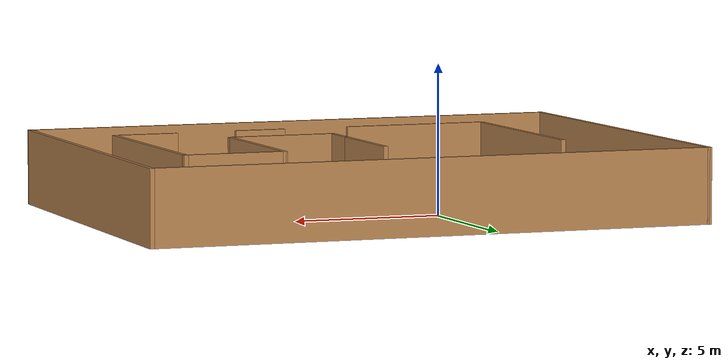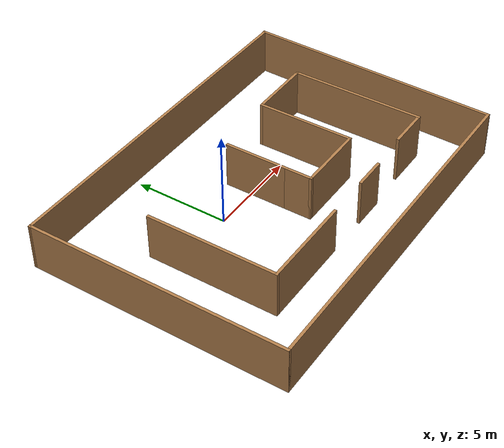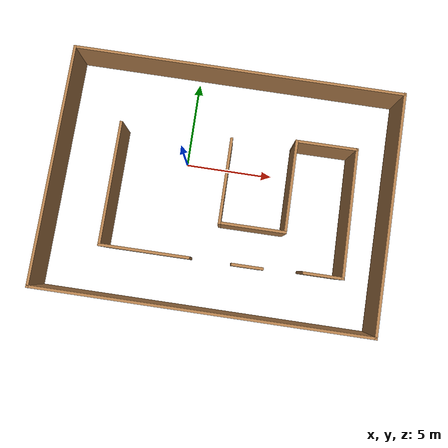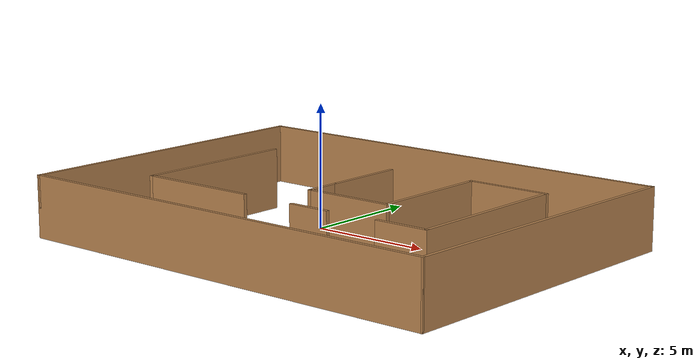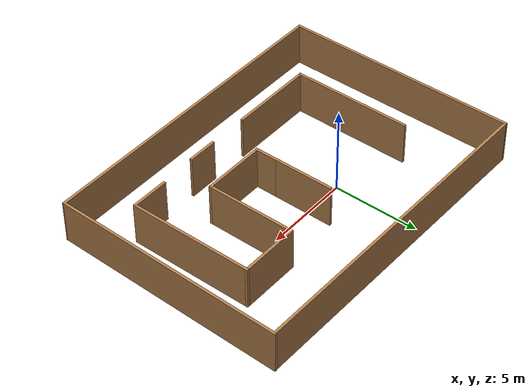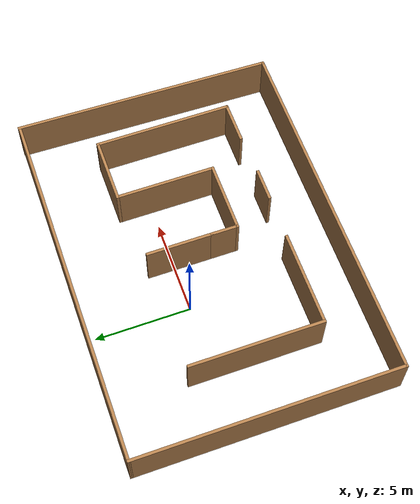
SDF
<?xml version='1.0'?>
<sdf version='1.7'>
  <model name='Untitled'>
    <pose>2.25874 -1.36255 0 0 -0 0</pose>
    <link name='Wall_32'>
      <collision name='Wall_32_Collision'>
        <geometry>
          <box>
            <size>13.75 0.15 2.5</size>
          </box>
        </geometry>
        <pose>0 0 1.25 0 -0 0</pose>
      </collision>
      <visual name='Wall_32_Visual'>
        <pose>0 0 1.25 0 -0 0</pose>
        <geometry>
          <box>
            <size>13.75 0.15 2.5</size>
          </box>
        </geometry>
        <material>
          <script>
            <uri>file://media/materials/scripts/gazebo.material</uri>
            <name>Gazebo/Wood</name>
          </script>
          <ambient>1 1 1 1</ambient>
        </material>
        <meta>
          <layer>0</layer>
        </meta>
      </visual>
      <pose>-9.45093 0.000569 0 0 -0 -1.5708</pose>
    </link>
    <link name='Wall_33'>
      <collision name='Wall_33_Collision'>
        <geometry>
          <box>
            <size>18.75 0.15 2.5</size>
          </box>
        </geometry>
        <pose>0 0 1.25 0 -0 0</pose>
      </collision>
      <visual name='Wall_33_Visual'>
        <pose>0 0 1.25 0 -0 0</pose>
        <geometry>
          <box>
            <size>18.75 0.15 2.5</size>
          </box>
        </geometry>
        <material>
          <script>
            <uri>file://media/materials/scripts/gazebo.material</uri>
            <name>Gazebo/Wood</name>
          </script>
          <ambient>1 1 1 1</ambient>
        </material>
        <meta>
          <layer>0</layer>
        </meta>
      </visual>
      <pose>-0.150932 -6.79943 0 0 -0 0</pose>
    </link>
    <link name='Wall_34'>
      <collision name='Wall_34_Collision'>
        <geometry>
          <box>
            <size>13.6466 0.15 2.5</size>
          </box>
        </geometry>
        <pose>0 0 1.25 0 -0 0</pose>
      </collision>
      <visual name='Wall_34_Visual'>
        <pose>0 0 1.25 0 -0 0</pose>
        <geometry>
          <box>
            <size>13.6466 0.15 2.5</size>
          </box>
        </geometry>
        <material>
          <script>
            <uri>file://media/materials/scripts/gazebo.material</uri>
            <name>Gazebo/Wood</name>
          </script>
          <ambient>1 1 1 1</ambient>
        </material>
        <meta>
          <layer>0</layer>
        </meta>
      </visual>
      <pose>9.29942 -0.052821 0 0 -0 1.54852</pose>
    </link>
    <link name='Wall_35'>
      <collision name='Wall_35_Collision'>
        <geometry>
          <box>
            <size>19.0048 0.15 2.5</size>
          </box>
        </geometry>
        <pose>0 0 1.25 0 -0 0</pose>
      </collision>
      <visual name='Wall_35_Visual'>
        <pose>0 0 1.25 0 -0 0</pose>
        <geometry>
          <box>
            <size>19.0048 0.15 2.5</size>
          </box>
        </geometry>
        <material>
          <script>
            <uri>file://media/materials/scripts/gazebo.material</uri>
            <name>Gazebo/Wood</name>
          </script>
          <ambient>1 1 1 1</ambient>
        </material>
        <meta>
          <layer>0</layer>
        </meta>
      </visual>
      <pose>-0.023714 6.73561 0 0 -0 3.1347</pose>
    </link>
    <link name='Wall_39'>
      <collision name='Wall_39_Collision'>
        <geometry>
          <box>
            <size>7 0.15 2.5</size>
          </box>
        </geometry>
        <pose>0 0 1.25 0 -0 0</pose>
      </collision>
      <visual name='Wall_39_Visual'>
        <pose>0 0 1.25 0 -0 0</pose>
        <geometry>
          <box>
            <size>7 0.15 2.5</size>
          </box>
        </geometry>
        <material>
          <script>
            <uri>file://media/materials/scripts/gazebo.material</uri>
            <name>Gazebo/Wood</name>
          </script>
          <ambient>1 1 1 1</ambient>
        </material>
        <meta>
          <layer>0</layer>
        </meta>
      </visual>
      <pose>-6.07377 -0.649805 0 0 -0 -1.5708</pose>
    </link>
    <link name='Wall_40'>
      <collision name='Wall_40_Collision'>
        <geometry>
          <box>
            <size>5 0.15 2.5</size>
          </box>
        </geometry>
        <pose>0 0 1.25 0 -0 0</pose>
      </collision>
      <visual name='Wall_40_Visual'>
        <pose>0 0 1.25 0 -0 0</pose>
        <geometry>
          <box>
            <size>5 0.15 2.5</size>
          </box>
        </geometry>
        <material>
          <script>
            <uri>file://media/materials/scripts/gazebo.material</uri>
            <name>Gazebo/Wood</name>
          </script>
          <ambient>1 1 1 1</ambient>
        </material>
        <meta>
          <layer>0</layer>
        </meta>
      </visual>
      <pose>-3.64877 -4.0748 0 0 -0 0</pose>
    </link>
    <link name='Wall_42'>
      <collision name='Wall_42_Collision'>
        <geometry>
          <box>
            <size>1.75 0.15 2.5</size>
          </box>
        </geometry>
        <pose>0 0 1.25 0 -0 0</pose>
      </collision>
      <visual name='Wall_42_Visual'>
        <pose>0 0 1.25 0 -0 0</pose>
        <geometry>
          <box>
            <size>1.75 0.15 2.5</size>
          </box>
        </geometry>
        <material>
          <script>
            <uri>file://media/materials/scripts/gazebo.material</uri>
            <name>Gazebo/Wood</name>
          </script>
          <ambient>1 1 1 1</ambient>
        </material>
        <meta>
          <layer>0</layer>
        </meta>
      </visual>
      <pose>1.97305 -4.08466 0 0 -0 0</pose>
    </link>
    <link name='Wall_44'>
      <collision name='Wall_44_Collision'>
        <geometry>
          <box>
            <size>2.25 0.15 2.5</size>
          </box>
        </geometry>
        <pose>0 0 1.25 0 -0 0</pose>
      </collision>
      <visual name='Wall_44_Visual'>
        <pose>0 0 1.25 0 -0 0</pose>
        <geometry>
          <box>
            <size>2.25 0.15 2.5</size>
          </box>
        </geometry>
        <material>
          <script>
            <uri>file://media/materials/scripts/gazebo.material</uri>
            <name>Gazebo/Wood</name>
          </script>
          <ambient>1 1 1 1</ambient>
        </material>
        <meta>
          <layer>0</layer>
        </meta>
      </visual>
      <pose>6.05754 -3.97913 0 0 -0 0</pose>
    </link>
    <link name='Wall_46'>
      <collision name='Wall_46_Collision'>
        <geometry>
          <box>
            <size>7.25 0.15 2.5</size>
          </box>
        </geometry>
        <pose>0 0 1.25 0 -0 0</pose>
      </collision>
      <visual name='Wall_46_Visual'>
        <pose>0 0 1.25 0 -0 0</pose>
        <geometry>
          <box>
            <size>7.25 0.15 2.5</size>
          </box>
        </geometry>
        <material>
          <script>
            <uri>file://media/materials/scripts/gazebo.material</uri>
            <name>Gazebo/Wood</name>
          </script>
          <ambient>1 1 1 1</ambient>
        </material>
        <meta>
          <layer>0</layer>
        </meta>
      </visual>
      <pose>7.10754 -0.429127 0 0 -0 1.5708</pose>
    </link>
    <link name='Wall_47'>
      <collision name='Wall_47_Collision'>
        <geometry>
          <box>
            <size>3.5 0.15 2.5</size>
          </box>
        </geometry>
        <pose>0 0 1.25 0 -0 0</pose>
      </collision>
      <visual name='Wall_47_Visual'>
        <pose>0 0 1.25 0 -0 0</pose>
        <geometry>
          <box>
            <size>3.5 0.15 2.5</size>
          </box>
        </geometry>
        <material>
          <script>
            <uri>file://media/materials/scripts/gazebo.material</uri>
            <name>Gazebo/Wood</name>
          </script>
          <ambient>1 1 1 1</ambient>
        </material>
        <meta>
          <layer>0</layer>
        </meta>
      </visual>
      <pose>5.43254 3.12087 0 0 -0 3.14159</pose>
    </link>
    <link name='Wall_48'>
      <collision name='Wall_48_Collision'>
        <geometry>
          <box>
            <size>5.25 0.15 2.5</size>
          </box>
        </geometry>
        <pose>0 0 1.25 0 -0 0</pose>
      </collision>
      <visual name='Wall_48_Visual'>
        <pose>0 0 1.25 0 -0 0</pose>
        <geometry>
          <box>
            <size>5.25 0.15 2.5</size>
          </box>
        </geometry>
        <material>
          <script>
            <uri>file://media/materials/scripts/gazebo.material</uri>
            <name>Gazebo/Wood</name>
          </script>
          <ambient>1 1 1 1</ambient>
        </material>
        <meta>
          <layer>0</layer>
        </meta>
      </visual>
      <pose>3.75754 0.570873 0 0 -0 -1.5708</pose>
    </link>
    <link name='Wall_50'>
      <collision name='Wall_50_Collision'>
        <geometry>
          <box>
            <size>3.75 0.15 2.5</size>
          </box>
        </geometry>
        <pose>0 0 1.25 0 -0 0</pose>
      </collision>
      <visual name='Wall_50_Visual'>
        <pose>0 0 1.25 0 -0 0</pose>
        <geometry>
          <box>
            <size>3.75 0.15 2.5</size>
          </box>
        </geometry>
        <material>
          <script>
            <uri>file://media/materials/scripts/gazebo.material</uri>
            <name>Gazebo/Wood</name>
          </script>
          <ambient>1 1 1 1</ambient>
        </material>
        <meta>
          <layer>0</layer>
        </meta>
      </visual>
      <pose>1.95754 -1.97913 0 0 -0 3.14159</pose>
    </link>
    <link name='Wall_51'>
      <collision name='Wall_51_Collision'>
        <geometry>
          <box>
            <size>1.5 0.15 2.5</size>
          </box>
        </geometry>
        <pose>0 0 1.25 0 -0 0</pose>
      </collision>
      <visual name='Wall_51_Visual'>
        <pose>0 0 1.25 0 -0 0</pose>
        <geometry>
          <box>
            <size>1.5 0.15 2.5</size>
          </box>
        </geometry>
        <material>
          <script>
            <uri>file://media/materials/scripts/gazebo.material</uri>
            <name>Gazebo/Wood</name>
          </script>
          <ambient>1 1 1 1</ambient>
        </material>
        <meta>
          <layer>0</layer>
        </meta>
      </visual>
      <pose>0.157539 -1.30413 0 0 -0 1.5708</pose>
    </link>
    <link name='Wall_52'>
      <collision name='Wall_52_Collision'>
        <geometry>
          <box>
            <size>3.5 0.15 2.5</size>
          </box>
        </geometry>
        <pose>0 0 1.25 0 -0 0</pose>
      </collision>
      <visual name='Wall_52_Visual'>
        <pose>0 0 1.25 0 -0 0</pose>
        <geometry>
          <box>
            <size>3.5 0.15 2.5</size>
          </box>
        </geometry>
        <material>
          <script>
            <uri>file://media/materials/scripts/gazebo.material</uri>
            <name>Gazebo/Wood</name>
          </script>
          <ambient>1 1 1 1</ambient>
        </material>
        <meta>
          <layer>0</layer>
        </meta>
      </visual>
      <pose>0.157539 1.04587 0 0 -0 1.5708</pose>
    </link>
    <static>1</static>
  </model>
</sdf>
